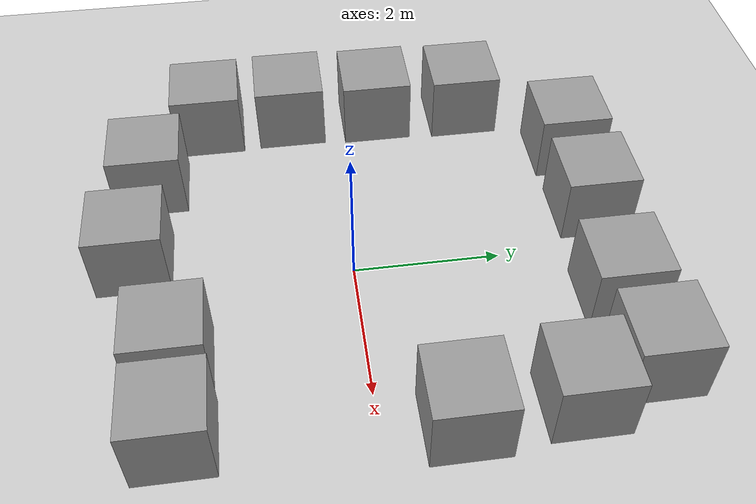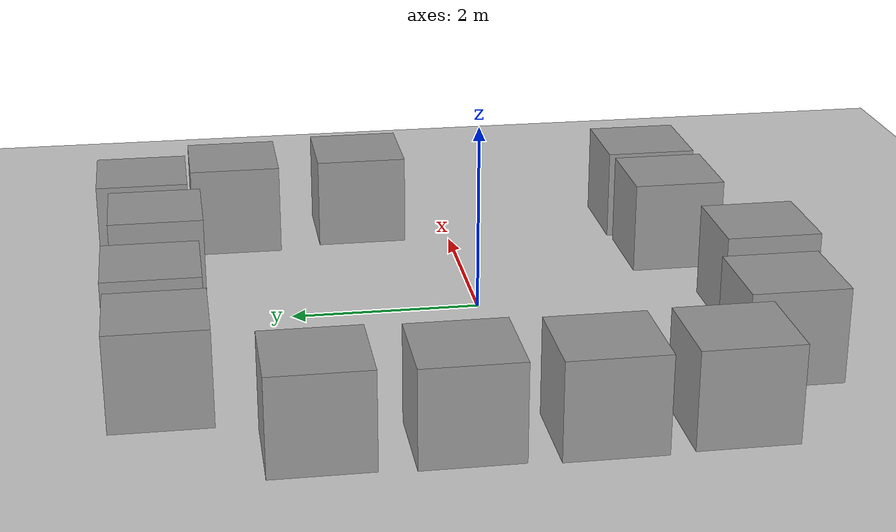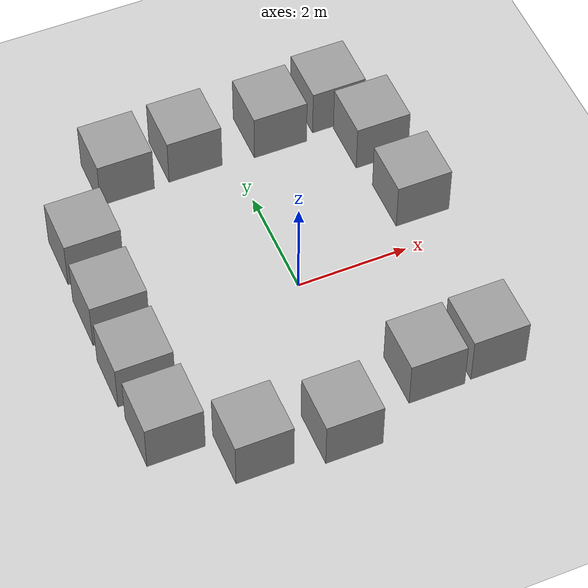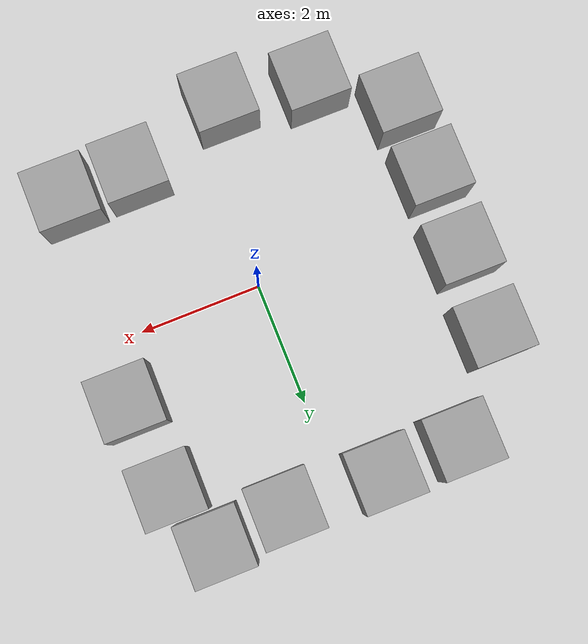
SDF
<sdf version="1.7">
 <world name="default">
  <model name="ground_plane">
   <static>1</static>
   <link name="link">
    <collision name="collision">
     <geometry><plane><normal>0 0 1</normal><size>100 100</size></plane></geometry>
     <surface><friction><ode><mu>100</mu><mu2>50</mu2></ode></friction></surface>
    </collision>
    <visual name="visual">
     <cast_shadows>0</cast_shadows>
     <geometry><plane><normal>0 0 1</normal><size>100 100</size></plane></geometry>
     <material>
      <script><uri>file://media/materials/scripts/gazebo.material</uri><name>Gazebo/Grey</name></script>
     </material>
    </visual>
   </link>
  </model>
  <light name="sun" type="directional">
   <pose>0 0 10 0 -0 0</pose>
   <diffuse>0.8 0.8 0.8 1</diffuse>
   <specular>0.2 0.2 0.2 1</specular>
   <attenuation>
    <range>1000</range>
    <constant>0.9</constant>
    <linear>0.01</linear>
    <quadratic>0.001</quadratic>
   </attenuation>
   <direction>-0.5 0.1 -0.9</direction>
   <spot><inner_angle>0</inner_angle><outer_angle>0</outer_angle><falloff>0</falloff></spot>
  </light>
  <physics type="ode">
   <real_time_update_rate>1000</real_time_update_rate>
   <max_step_size>0.001</max_step_size>
   <real_time_factor>1</real_time_factor>
  </physics>
  <scene><ambient>0.4 0.4 0.4 1</ambient><background>0.7 0.7 0.7 1</background><shadows>1</shadows></scene>
  <gravity>0 0 -9.8</gravity>
  <magnetic_field>6e-06 2.3e-05 -4.2e-05</magnetic_field>
  <atmosphere type="adiabatic"/>
  <audio><device>default</device></audio>
  <spherical_coordinates>
   <surface_model>EARTH_WGS84</surface_model>
   <latitude_deg>0</latitude_deg>
   <longitude_deg>0</longitude_deg>
   <elevation>0</elevation>
   <heading_deg>0</heading_deg>
  </spherical_coordinates>
  <model name="unit_box">
   <pose>2.44537 2.46944 0.499995 -1e-05 -0 -0</pose>
   <link name="link">
    <inertial>
     <mass>1</mass>
     <inertia>
      <ixx>0.166667</ixx>
      <ixy>0</ixy>
      <ixz>0</ixz>
      <iyy>0.166667</iyy>
      <iyz>0</iyz>
      <izz>0.166667</izz>
     </inertia>
    </inertial>
    <collision name="collision"><geometry><box><size>1 1 1</size></box></geometry></collision>
    <visual name="visual">
     <geometry><box><size>1 1 1</size></box></geometry>
     <material>
      <script><name>Gazebo/Grey</name><uri>file://media/materials/scripts/gazebo.material</uri></script>
     </material>
    </visual>
   </link>
  </model>
  <model name="unit_box_0">
   <pose>2.55152 1.01285 0.499995 0 1e-05 0</pose>
   <link name="link">
    <inertial>
     <mass>1</mass>
     <inertia>
      <ixx>0.166667</ixx>
      <ixy>0</ixy>
      <ixz>0</ixz>
      <iyy>0.166667</iyy>
      <iyz>0</iyz>
      <izz>0.166667</izz>
     </inertia>
    </inertial>
    <collision name="collision"><geometry><box><size>1 1 1</size></box></geometry></collision>
    <visual name="visual">
     <geometry><box><size>1 1 1</size></box></geometry>
     <material>
      <script><name>Gazebo/Grey</name><uri>file://media/materials/scripts/gazebo.material</uri></script>
     </material>
    </visual>
   </link>
  </model>
  <model name="unit_box_1">
   <pose>0.886434 3.37866 0.499995 -1e-05 -0 -0</pose>
   <link name="link">
    <inertial>
     <mass>1</mass>
     <inertia>
      <ixx>0.166667</ixx>
      <ixy>0</ixy>
      <ixz>0</ixz>
      <iyy>0.166667</iyy>
      <iyz>0</iyz>
      <izz>0.166667</izz>
     </inertia>
    </inertial>
    <collision name="collision"><geometry><box><size>1 1 1</size></box></geometry></collision>
    <visual name="visual">
     <geometry><box><size>1 1 1</size></box></geometry>
     <material>
      <script><name>Gazebo/Grey</name><uri>file://media/materials/scripts/gazebo.material</uri></script>
     </material>
    </visual>
   </link>
  </model>
  <model name="unit_box_2">
   <pose>-0.701609 3.44335 0.499995 0 1e-05 0</pose>
   <link name="link">
    <inertial>
     <mass>1</mass>
     <inertia>
      <ixx>0.166667</ixx>
      <ixy>0</ixy>
      <ixz>0</ixz>
      <iyy>0.166667</iyy>
      <iyz>0</iyz>
      <izz>0.166667</izz>
     </inertia>
    </inertial>
    <collision name="collision"><geometry><box><size>1 1 1</size></box></geometry></collision>
    <visual name="visual">
     <geometry><box><size>1 1 1</size></box></geometry>
     <material>
      <script><name>Gazebo/Grey</name><uri>file://media/materials/scripts/gazebo.material</uri></script>
     </material>
    </visual>
   </link>
  </model>
  <model name="unit_box_3">
   <pose>-1.98576 3.41391 0.499995 -1e-05 -0 -0</pose>
   <link name="link">
    <inertial>
     <mass>1</mass>
     <inertia>
      <ixx>0.166667</ixx>
      <ixy>0</ixy>
      <ixz>0</ixz>
      <iyy>0.166667</iyy>
      <iyz>0</iyz>
      <izz>0.166667</izz>
     </inertia>
    </inertial>
    <collision name="collision"><geometry><box><size>1 1 1</size></box></geometry></collision>
    <visual name="visual">
     <geometry><box><size>1 1 1</size></box></geometry>
     <material>
      <script><name>Gazebo/Grey</name><uri>file://media/materials/scripts/gazebo.material</uri></script>
     </material>
    </visual>
   </link>
  </model>
  <model name="unit_box_4">
   <pose>2.06026 3.51355 0.499995 0 1e-05 0</pose>
   <link name="link">
    <inertial>
     <mass>1</mass>
     <inertia>
      <ixx>0.166667</ixx>
      <ixy>0</ixy>
      <ixz>0</ixz>
      <iyy>0.166667</iyy>
      <iyz>0</iyz>
      <izz>0.166667</izz>
     </inertia>
    </inertial>
    <collision name="collision"><geometry><box><size>1 1 1</size></box></geometry></collision>
    <visual name="visual">
     <geometry><box><size>1 1 1</size></box></geometry>
     <material>
      <script><name>Gazebo/Grey</name><uri>file://media/materials/scripts/gazebo.material</uri></script>
     </material>
    </visual>
   </link>
  </model>
  <model name="unit_box_5">
   <pose>2.34722 -2.36726 0.499995 -1e-05 -0 -0</pose>
   <link name="link">
    <inertial>
     <mass>1</mass>
     <inertia>
      <ixx>0.166667</ixx>
      <ixy>0</ixy>
      <ixz>0</ixz>
      <iyy>0.166667</iyy>
      <iyz>0</iyz>
      <izz>0.166667</izz>
     </inertia>
    </inertial>
    <collision name="collision"><geometry><box><size>1 1 1</size></box></geometry></collision>
    <visual name="visual">
     <geometry><box><size>1 1 1</size></box></geometry>
     <material>
      <script><name>Gazebo/Grey</name><uri>file://media/materials/scripts/gazebo.material</uri></script>
     </material>
    </visual>
   </link>
  </model>
  <model name="unit_box_6">
   <pose>1.21913 -2.40248 0.499995 0 1e-05 0</pose>
   <link name="link">
    <inertial>
     <mass>1</mass>
     <inertia>
      <ixx>0.166667</ixx>
      <ixy>0</ixy>
      <ixz>0</ixz>
      <iyy>0.166667</iyy>
      <iyz>0</iyz>
      <izz>0.166667</izz>
     </inertia>
    </inertial>
    <collision name="collision"><geometry><box><size>1 1 1</size></box></geometry></collision>
    <visual name="visual">
     <geometry><box><size>1 1 1</size></box></geometry>
     <material>
      <script><name>Gazebo/Grey</name><uri>file://media/materials/scripts/gazebo.material</uri></script>
     </material>
    </visual>
   </link>
  </model>
  <model name="unit_box_7">
   <pose>-3.07812 2.01592 0.499995 -1e-05 -0 -0</pose>
   <link name="link">
    <inertial>
     <mass>1</mass>
     <inertia>
      <ixx>0.166667</ixx>
      <ixy>0</ixy>
      <ixz>0</ixz>
      <iyy>0.166667</iyy>
      <iyz>0</iyz>
      <izz>0.166667</izz>
     </inertia>
    </inertial>
    <collision name="collision"><geometry><box><size>1 1 1</size></box></geometry></collision>
    <visual name="visual">
     <geometry><box><size>1 1 1</size></box></geometry>
     <material>
      <script><name>Gazebo/Grey</name><uri>file://media/materials/scripts/gazebo.material</uri></script>
     </material>
    </visual>
   </link>
  </model>
  <model name="unit_box_8">
   <pose>-3.11836 0.667887 0.499995 0 1e-05 0</pose>
   <link name="link">
    <inertial>
     <mass>1</mass>
     <inertia>
      <ixx>0.166667</ixx>
      <ixy>0</ixy>
      <ixz>0</ixz>
      <iyy>0.166667</iyy>
      <iyz>0</iyz>
      <izz>0.166667</izz>
     </inertia>
    </inertial>
    <collision name="collision"><geometry><box><size>1 1 1</size></box></geometry></collision>
    <visual name="visual">
     <geometry><box><size>1 1 1</size></box></geometry>
     <material>
      <script><name>Gazebo/Grey</name><uri>file://media/materials/scripts/gazebo.material</uri></script>
     </material>
    </visual>
   </link>
  </model>
  <model name="unit_box_9">
   <pose>-3.16143 -0.638496 0.499995 -1e-05 -0 -0</pose>
   <link name="link">
    <inertial>
     <mass>1</mass>
     <inertia>
      <ixx>0.166667</ixx>
      <ixy>0</ixy>
      <ixz>0</ixz>
      <iyy>0.166667</iyy>
      <iyz>0</iyz>
      <izz>0.166667</izz>
     </inertia>
    </inertial>
    <collision name="collision"><geometry><box><size>1 1 1</size></box></geometry></collision>
    <visual name="visual">
     <geometry><box><size>1 1 1</size></box></geometry>
     <material>
      <script><name>Gazebo/Grey</name><uri>file://media/materials/scripts/gazebo.material</uri></script>
     </material>
    </visual>
   </link>
  </model>
  <model name="unit_box_10">
   <pose>-3.132 -1.88418 0.499995 0 1e-05 0</pose>
   <link name="link">
    <inertial>
     <mass>1</mass>
     <inertia>
      <ixx>0.166667</ixx>
      <ixy>0</ixy>
      <ixz>0</ixz>
      <iyy>0.166667</iyy>
      <iyz>0</iyz>
      <izz>0.166667</izz>
     </inertia>
    </inertial>
    <collision name="collision"><geometry><box><size>1 1 1</size></box></geometry></collision>
    <visual name="visual">
     <geometry><box><size>1 1 1</size></box></geometry>
     <material>
      <script><name>Gazebo/Grey</name><uri>file://media/materials/scripts/gazebo.material</uri></script>
     </material>
    </visual>
   </link>
  </model>
  <model name="unit_box_11">
   <pose>-1.94725 -2.73154 0.499995 -1e-05 -0 0</pose>
   <link name="link">
    <inertial>
     <mass>1</mass>
     <inertia>
      <ixx>0.166667</ixx>
      <ixy>0</ixy>
      <ixz>0</ixz>
      <iyy>0.166667</iyy>
      <iyz>0</iyz>
      <izz>0.166667</izz>
     </inertia>
    </inertial>
    <collision name="collision"><geometry><box><size>1 1 1</size></box></geometry></collision>
    <visual name="visual">
     <geometry><box><size>1 1 1</size></box></geometry>
     <material>
      <script><name>Gazebo/Grey</name><uri>file://media/materials/scripts/gazebo.material</uri></script>
     </material>
    </visual>
   </link>
  </model>
  <model name="unit_box_12">
   <pose>-0.488256 -2.93518 0.5 0 -0 0</pose>
   <link name="link">
    <inertial>
     <mass>1</mass>
     <inertia>
      <ixx>0.166667</ixx>
      <ixy>0</ixy>
      <ixz>0</ixz>
      <iyy>0.166667</iyy>
      <iyz>0</iyz>
      <izz>0.166667</izz>
     </inertia>
    </inertial>
    <collision name="collision"><geometry><box><size>1 1 1</size></box></geometry></collision>
    <visual name="visual">
     <geometry><box><size>1 1 1</size></box></geometry>
     <material>
      <script><name>Gazebo/Grey</name><uri>file://media/materials/scripts/gazebo.material</uri></script>
     </material>
    </visual>
   </link>
  </model>
 </world>
</sdf>
